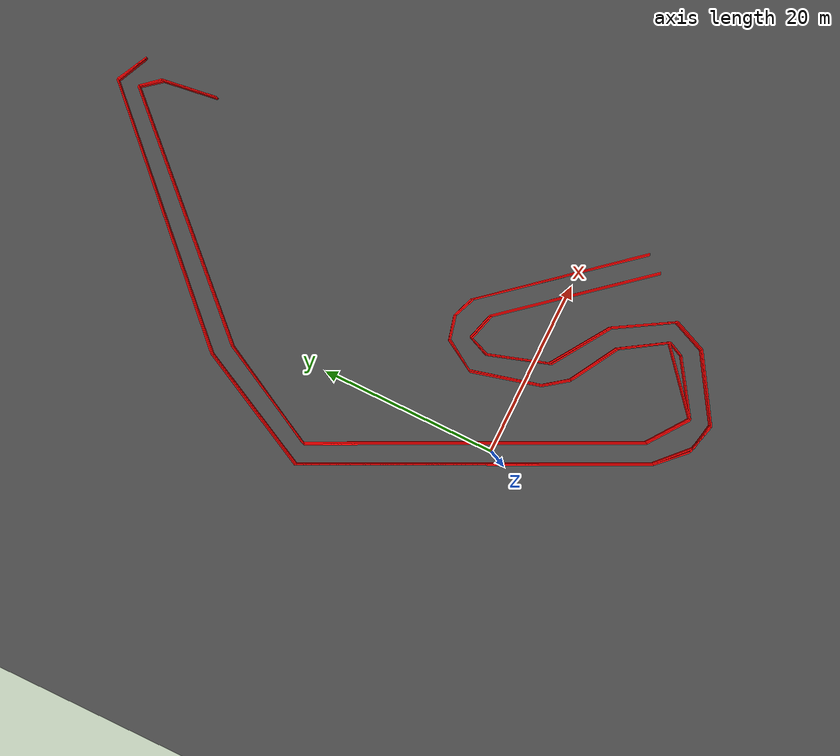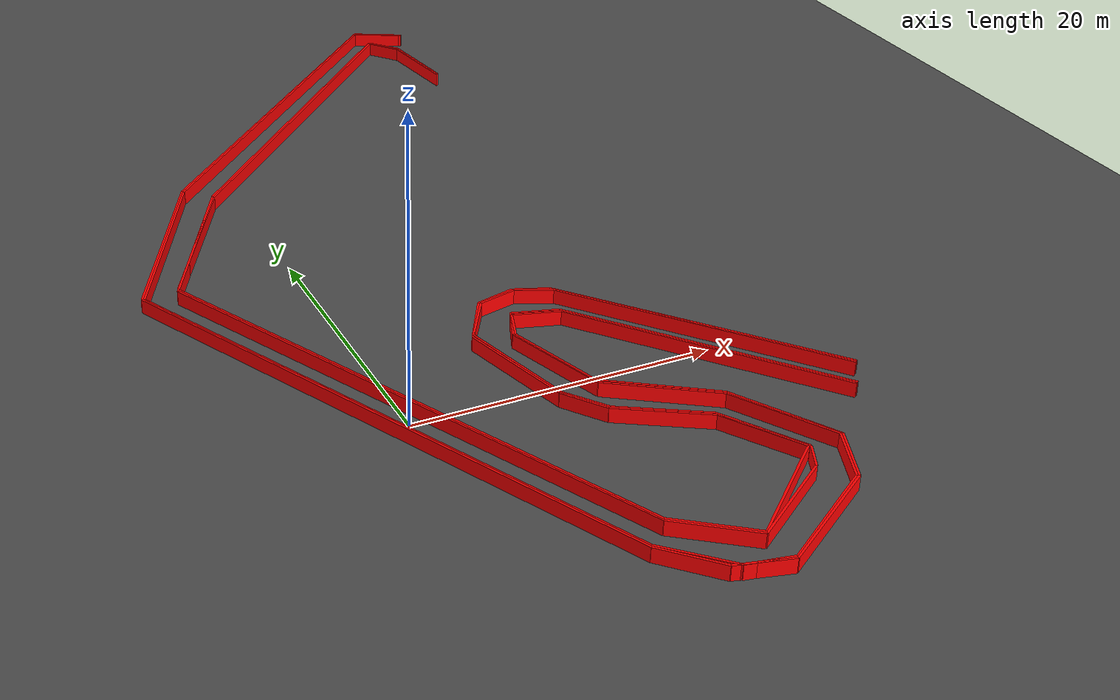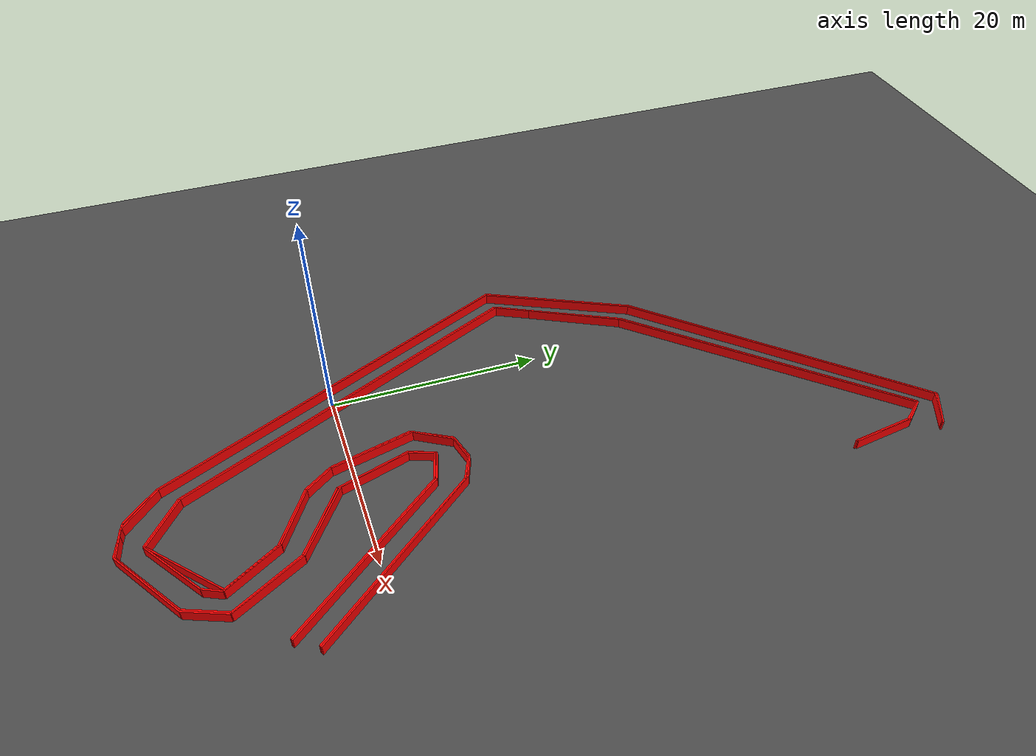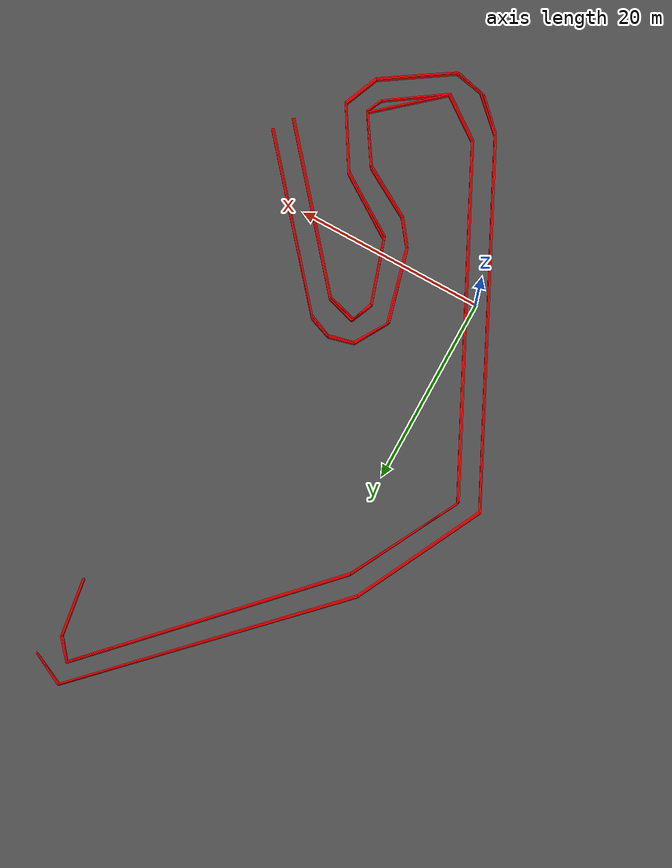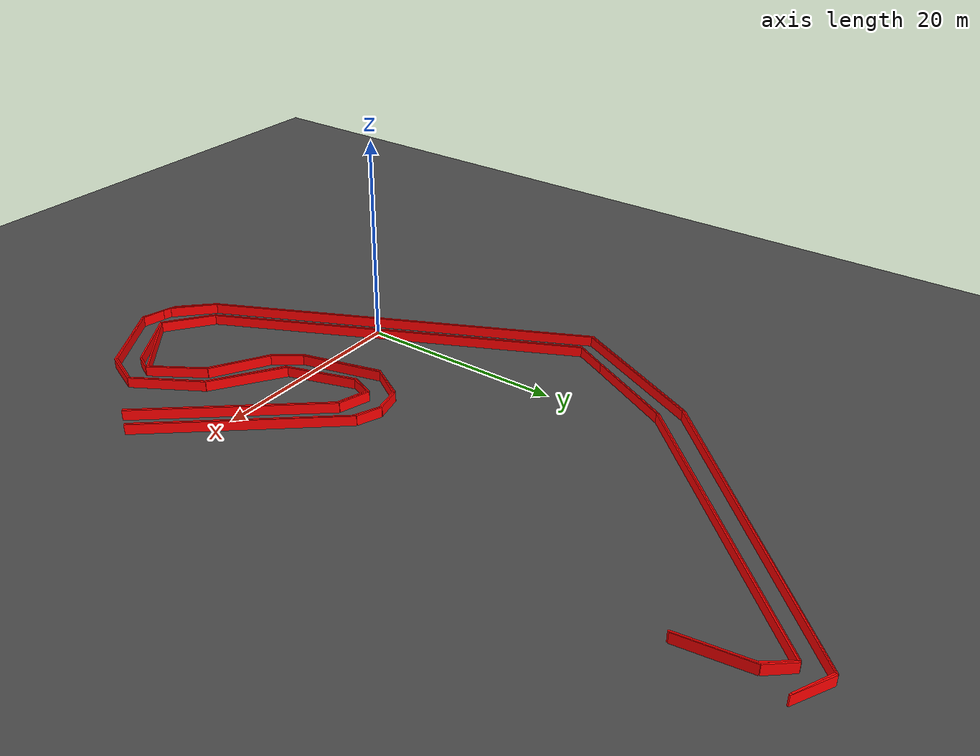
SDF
<sdf version="1.6">
 <world name="track_world">
  <model name="ground_plane">
   <static>true</static>
   <link name="link">
    <collision name="collision">
     <geometry><plane><normal>0 0 1</normal><size>1000 1000</size></plane></geometry>
    </collision>
    <visual name="visual">
     <geometry><plane><normal>0 0 1</normal><size>1000 1000</size></plane></geometry>
     <material><ambient>0.3 0.3 0.3 1</ambient><diffuse>0.3 0.3 0.3 1</diffuse></material>
    </visual>
   </link>
  </model>
  <model name="wall_0">
   <static>true</static>
   <pose>-2.016873834397966 1.0977800031214713 0.5 0 0 -1.1171792455826415</pose>
   <link name="link">
    <visual name="visual">
     <geometry><box><size>38.8459968612314 0.15 1.0</size></box></geometry>
     <material><ambient>1 0 0 1</ambient><diffuse>1 0 0 1</diffuse></material>
    </visual>
    <collision name="collision"><geometry><box><size>38.8459968612314 0.15 1.0</size></box></geometry></collision>
   </link>
  </model>
  <model name="wall_1">
   <static>true</static>
   <pose>7.969106165602033 -17.835369996878526 0.5 0 0 -0.7853981633974483</pose>
   <link name="link">
    <visual name="visual">
     <geometry><box><size>4.170346089810772 0.15 1.0</size></box></geometry>
     <material><ambient>1 0 0 1</ambient><diffuse>1 0 0 1</diffuse></material>
    </visual>
    <collision name="collision">
     <geometry><box><size>4.170346089810772 0.15 1.0</size></box></geometry>
    </collision>
   </link>
  </model>
  <model name="wall_2">
   <static>true</static>
   <pose>11.186066165602032 -19.745439996878524 0.5 0 0 -0.24497866312686414</pose>
   <link name="link">
    <visual name="visual">
     <geometry><box><size>3.592297007375641 0.15 1.0</size></box></geometry>
     <material><ambient>1 0 0 1</ambient><diffuse>1 0 0 1</diffuse></material>
    </visual>
    <collision name="collision">
     <geometry><box><size>3.592297007375641 0.15 1.0</size></box></geometry>
    </collision>
   </link>
  </model>
  <model name="wall_3">
   <static>true</static>
   <pose>16.48064616560203 -17.902389996878526 0.5 0 0 0.5703832816499416</pose>
   <link name="link">
    <visual name="visual">
     <geometry><box><size>8.440263689245734 0.15 1.0</size></box></geometry>
     <material><ambient>1 0 0 1</ambient><diffuse>1 0 0 1</diffuse></material>
    </visual>
    <collision name="collision">
     <geometry><box><size>8.440263689245734 0.15 1.0</size></box></geometry>
    </collision>
   </link>
  </model>
  <model name="wall_4">
   <static>true</static>
   <pose>20.803436165602033 -13.780659996878523 0.5 0 0 1.1747148852305893</pose>
   <link name="link">
    <visual name="visual">
     <geometry><box><size>3.9954264029762863 0.15 1.0</size></box></geometry>
     <material><ambient>1 0 0 1</ambient><diffuse>1 0 0 1</diffuse></material>
    </visual>
    <collision name="collision">
     <geometry><box><size>3.9954264029762863 0.15 1.0</size></box></geometry>
    </collision>
   </link>
  </model>
  <model name="wall_5">
   <static>true</static>
   <pose>19.697606165602032 -8.787669996878524 0.5 0 0 2.108081041095669</pose>
   <link name="link">
    <visual name="visual">
     <geometry><box><size>7.333102873190853 0.15 1.0</size></box></geometry>
     <material><ambient>1 0 0 1</ambient><diffuse>1 0 0 1</diffuse></material>
    </visual>
    <collision name="collision">
     <geometry><box><size>7.333102873190853 0.15 1.0</size></box></geometry>
    </collision>
   </link>
  </model>
  <model name="wall_6">
   <static>true</static>
   <pose>14.637596165602032 -3.5265999968785238 0.5 0 0 2.556023135265334</pose>
   <link name="link">
    <visual name="visual">
     <geometry><box><size>7.639692082643123 0.15 1.0</size></box></geometry>
     <material><ambient>1 0 0 1</ambient><diffuse>1 0 0 1</diffuse></material>
    </visual>
    <collision name="collision">
     <geometry><box><size>7.639692082643123 0.15 1.0</size></box></geometry>
    </collision>
   </link>
  </model>
  <model name="wall_7">
   <static>true</static>
   <pose>10.415336165602033 1.8350000031214755 0.5 0 0 1.880125159869584</pose>
   <link name="link">
    <visual name="visual">
     <geometry><box><size>6.824860859241007 0.15 1.0</size></box></geometry>
     <material><ambient>1 0 0 1</ambient><diffuse>1 0 0 1</diffuse></material>
    </visual>
    <collision name="collision">
     <geometry><box><size>6.824860859241007 0.15 1.0</size></box></geometry>
    </collision>
   </link>
  </model>
  <model name="wall_8">
   <static>true</static>
   <pose>9.778646165602034 6.191300003121473 0.5 0 0 1.2220253232109899</pose>
   <link name="link">
    <visual name="visual">
     <geometry><box><size>2.35334696404929 0.15 1.0</size></box></geometry>
     <material><ambient>1 0 0 1</ambient><diffuse>1 0 0 1</diffuse></material>
    </visual>
    <collision name="collision"><geometry><box><size>2.35334696404929 0.15 1.0</size></box></geometry></collision>
   </link>
  </model>
  <model name="wall_9">
   <static>true</static>
   <pose>11.722226165602034 6.861500003121474 0.5 0 0 -0.2754261036960351</pose>
   <link name="link">
    <visual name="visual">
     <geometry><box><size>3.203668165400407 0.15 1.0</size></box></geometry>
     <material><ambient>1 0 0 1</ambient><diffuse>1 0 0 1</diffuse></material>
    </visual>
    <collision name="collision">
     <geometry><box><size>3.203668165400407 0.15 1.0</size></box></geometry>
    </collision>
   </link>
  </model>
  <model name="wall_10">
   <static>true</static>
   <pose>19.32899616560203 -0.7787799968785265 0.5 0 0 -0.8710467030279754</pose>
   <link name="link">
    <visual name="visual">
     <geometry><box><size>18.835601080783164 0.15 1.0</size></box></geometry>
     <material><ambient>1 0 0 1</ambient><diffuse>1 0 0 1</diffuse></material>
    </visual>
    <collision name="collision">
     <geometry><box><size>18.835601080783164 0.15 1.0</size></box></geometry>
    </collision>
   </link>
  </model>
  <model name="wall_27">
   <static>true</static>
   <pose>20.30078616560203 53.23934000312147 0.5 0 0 2.6626790550422075</pose>
   <link name="link">
    <visual name="visual">
     <geometry><box><size>3.926822992343808 0.15 1.0</size></box></geometry>
     <material><ambient>1 0 0 1</ambient><diffuse>1 0 0 1</diffuse></material>
    </visual>
    <collision name="collision">
     <geometry><box><size>3.926822992343808 0.15 1.0</size></box></geometry>
    </collision>
   </link>
  </model>
  <model name="wall_28">
   <static>true</static>
   <pose>7.432946165602033 43.05230000312147 0.5 0 0 -2.3577027846745207</pose>
   <link name="link">
    <visual name="visual">
     <geometry><box><size>31.41980230227427 0.15 1.0</size></box></geometry>
     <material><ambient>1 0 0 1</ambient><diffuse>1 0 0 1</diffuse></material>
    </visual>
    <collision name="collision">
     <geometry><box><size>31.41980230227427 0.15 1.0</size></box></geometry>
    </collision>
   </link>
  </model>
  <model name="wall_29">
   <static>true</static>
   <pose>-7.110393834397966 25.258490003121473 0.5 0 0 -2.042411894657224</pose>
   <link name="link">
    <visual name="visual">
     <geometry><box><size>15.046549733463824 0.15 1.0</size></box></geometry>
     <material><ambient>1 0 0 1</ambient><diffuse>1 0 0 1</diffuse></material>
    </visual>
    <collision name="collision">
     <geometry><box><size>15.046549733463824 0.15 1.0</size></box></geometry>
    </collision>
   </link>
  </model>
  <model name="wall_30">
   <static>true</static>
   <pose>-7.009863834397966 25.157960003121474 0.5 0 0 1.1011367661781577</pose>
   <link name="link">
    <visual name="visual">
     <geometry><box><size>14.95642561846915 0.15 1.0</size></box></geometry>
     <material><ambient>1 0 0 1</ambient><diffuse>1 0 0 1</diffuse></material>
    </visual>
    <collision name="collision">
     <geometry><box><size>14.95642561846915 0.15 1.0</size></box></geometry>
    </collision>
   </link>
  </model>
  <model name="wall_31">
   <static>true</static>
   <pose>7.432946165602033 42.918260003121475 0.5 0 0 0.7869110215473523</pose>
   <link name="link">
    <visual name="visual">
     <geometry><box><size>31.325021817460872 0.15 1.0</size></box></geometry>
     <material><ambient>1 0 0 1</ambient><diffuse>1 0 0 1</diffuse></material>
    </visual>
    <collision name="collision">
     <geometry><box><size>31.325021817460872 0.15 1.0</size></box></geometry>
    </collision>
   </link>
  </model>
  <model name="wall_32">
   <static>true</static>
   <pose>20.16674616560203 53.20583000312147 0.5 0 0 -0.44751997515717</pose>
   <link name="link">
    <visual name="visual">
     <geometry><box><size>3.717043033164937 0.15 1.0</size></box></geometry>
     <material><ambient>1 0 0 1</ambient><diffuse>1 0 0 1</diffuse></material>
    </visual>
    <collision name="collision">
     <geometry><box><size>3.717043033164937 0.15 1.0</size></box></geometry>
    </collision>
   </link>
  </model>
  <model name="wall_49">
   <static>true</static>
   <pose>19.396016165602035 -0.6447399968785241 0.5 0 0 2.271398315669142</pose>
   <link name="link">
    <visual name="visual">
     <geometry><box><size>19.02447432312388 0.15 1.0</size></box></geometry>
     <material><ambient>1 0 0 1</ambient><diffuse>1 0 0 1</diffuse></material>
    </visual>
    <collision name="collision">
     <geometry><box><size>19.02447432312388 0.15 1.0</size></box></geometry>
    </collision>
   </link>
  </model>
  <model name="wall_50">
   <static>true</static>
   <pose>11.755736165602034 7.062560003121472 0.5 0 0 2.8603604516714984</pose>
   <link name="link">
    <visual name="visual">
     <geometry><box><size>3.139227101947231 0.15 1.0</size></box></geometry>
     <material><ambient>1 0 0 1</ambient><diffuse>1 0 0 1</diffuse></material>
    </visual>
    <collision name="collision">
     <geometry><box><size>3.139227101947231 0.15 1.0</size></box></geometry>
    </collision>
   </link>
  </model>
  <model name="wall_51">
   <static>true</static>
   <pose>9.745136165602032 6.325340003121475 0.5 0 0 -1.9756881130799817</pose>
   <link name="link">
    <visual name="visual">
     <geometry><box><size>2.5520455677749907 0.15 1.0</size></box></geometry>
     <material><ambient>1 0 0 1</ambient><diffuse>1 0 0 1</diffuse></material>
    </visual>
    <collision name="collision">
     <geometry><box><size>2.5520455677749907 0.15 1.0</size></box></geometry>
    </collision>
   </link>
  </model>
  <model name="wall_52">
   <static>true</static>
   <pose>10.348316165602032 1.7344700031214764 0.5 0 0 -1.2578950989145121</pose>
   <link name="link">
    <visual name="visual">
     <geometry><box><size>7.184906599058895 0.15 1.0</size></box></geometry>
     <material><ambient>1 0 0 1</ambient><diffuse>1 0 0 1</diffuse></material>
    </visual>
    <collision name="collision">
     <geometry><box><size>7.184906599058895 0.15 1.0</size></box></geometry>
    </collision>
   </link>
  </model>
  <model name="wall_53">
   <static>true</static>
   <pose>14.604086165602032 -3.7276599968785256 0.5 0 0 -0.5756269977603663</pose>
   <link name="link">
    <visual name="visual">
     <geometry><box><size>7.510128546356579 0.15 1.0</size></box></geometry>
     <material><ambient>1 0 0 1</ambient><diffuse>1 0 0 1</diffuse></material>
    </visual>
    <collision name="collision">
     <geometry><box><size>7.510128546356579 0.15 1.0</size></box></geometry>
    </collision>
   </link>
  </model>
  <model name="wall_54">
   <static>true</static>
   <pose>19.597076165602033 -8.821179996878524 0.5 0 0 -1.0271510312616907</pose>
   <link name="link">
    <visual name="visual">
     <geometry><box><size>7.126214886066795 0.15 1.0</size></box></geometry>
     <material><ambient>1 0 0 1</ambient><diffuse>1 0 0 1</diffuse></material>
    </visual>
    <collision name="collision">
     <geometry><box><size>7.126214886066795 0.15 1.0</size></box></geometry>
    </collision>
   </link>
  </model>
  <model name="wall_55">
   <static>true</static>
   <pose>20.669396165602034 -13.713639996878523 0.5 0 0 -1.966877768359204</pose>
   <link name="link">
    <visual name="visual">
     <geometry><box><size>3.9954264029762863 0.15 1.0</size></box></geometry>
     <material><ambient>1 0 0 1</ambient><diffuse>1 0 0 1</diffuse></material>
    </visual>
    <collision name="collision">
     <geometry><box><size>3.9954264029762863 0.15 1.0</size></box></geometry>
    </collision>
   </link>
  </model>
  <model name="wall_56">
   <static>true</static>
   <pose>16.447136165602032 -17.801859996878527 0.5 0 0 -2.564876252527372</pose>
   <link name="link">
    <visual name="visual">
     <geometry><box><size>8.235010059447411 0.15 1.0</size></box></geometry>
     <material><ambient>1 0 0 1</ambient><diffuse>1 0 0 1</diffuse></material>
    </visual>
    <collision name="collision">
     <geometry><box><size>8.235010059447411 0.15 1.0</size></box></geometry>
    </collision>
   </link>
  </model>
  <model name="wall_57">
   <static>true</static>
   <pose>11.52116616560203 -19.778949996878524 0.5 0 0 2.961739153797314</pose>
   <link name="link">
    <visual name="visual">
     <geometry><box><size>2.9972255170407176 0.15 1.0</size></box></geometry>
     <material><ambient>1 0 0 1</ambient><diffuse>1 0 0 1</diffuse></material>
    </visual>
    <collision name="collision">
     <geometry><box><size>2.9972255170407176 0.15 1.0</size></box></geometry>
    </collision>
   </link>
  </model>
  <model name="wall_58">
   <static>true</static>
   <pose>8.304206165602032 -17.868879996878526 0.5 0 0 2.385888729799255</pose>
   <link name="link">
    <visual name="visual">
     <geometry><box><size>4.788530927330423 0.15 1.0</size></box></geometry>
     <material><ambient>1 0 0 1</ambient><diffuse>1 0 0 1</diffuse></material>
    </visual>
    <collision name="collision">
     <geometry><box><size>4.788530927330423 0.15 1.0</size></box></geometry>
    </collision>
   </link>
  </model>
  <model name="wall_59">
   <static>true</static>
   <pose>-1.9163438343979662 1.131290003121471 0.5 0 0 2.0251346624460393</pose>
   <link name="link">
    <visual name="visual">
     <geometry><box><size>38.63591104624297 0.15 1.0</size></box></geometry>
     <material><ambient>1 0 0 1</ambient><diffuse>1 0 0 1</diffuse></material>
    </visual>
    <collision name="collision">
     <geometry><box><size>38.63591104624297 0.15 1.0</size></box></geometry>
    </collision>
   </link>
  </model>
  <model name="wall_60">
   <static>true</static>
   <pose>0.060746165602033386 1.9690400031214779 0.5 0 0 -1.1144183797129017</pose>
   <link name="link">
    <visual name="visual">
     <geometry><box><size>37.10663240201138 0.15 1.0</size></box></geometry>
     <material><ambient>1 0 0 1</ambient><diffuse>1 0 0 1</diffuse></material>
    </visual>
    <collision name="collision">
     <geometry><box><size>37.10663240201138 0.15 1.0</size></box></geometry>
    </collision>
   </link>
  </model>
  <model name="wall_61">
   <static>true</static>
   <pose>10.415336165602033 -16.260399996878526 0.5 0 0 -0.6260465224935314</pose>
   <link name="link">
    <visual name="visual">
     <geometry><box><size>5.375822885252082 0.15 1.0</size></box></geometry>
     <material><ambient>1 0 0 1</ambient><diffuse>1 0 0 1</diffuse></material>
    </visual>
    <collision name="collision">
     <geometry><box><size>5.375822885252082 0.15 1.0</size></box></geometry>
    </collision>
   </link>
  </model>
  <model name="wall_62">
   <static>true</static>
   <pose>15.508856165602033 -15.858279996878526 0.5 0 0 0.5959180055163013</pose>
   <link name="link">
    <visual name="visual">
     <geometry><box><size>7.045074053549755 0.15 1.0</size></box></geometry>
     <material><ambient>1 0 0 1</ambient><diffuse>1 0 0 1</diffuse></material>
    </visual>
    <collision name="collision">
     <geometry><box><size>7.045074053549755 0.15 1.0</size></box></geometry>
    </collision>
   </link>
  </model>
  <model name="wall_63">
   <static>true</static>
   <pose>18.826346165602033 -13.043439996878526 0.5 0 0 1.1232763516377267</pose>
   <link name="link">
    <visual name="visual">
     <geometry><box><size>1.8585215165824684 0.15 1.0</size></box></geometry>
     <material><ambient>1 0 0 1</ambient><diffuse>1 0 0 1</diffuse></material>
    </visual>
    <collision name="collision">
     <geometry><box><size>1.8585215165824684 0.15 1.0</size></box></geometry>
    </collision>
   </link>
  </model>
  <model name="wall_64">
   <static>true</static>
   <pose>17.653496165602032 -9.725949996878526 0.5 0 0 2.1366506539029566</pose>
   <link name="link">
    <visual name="visual">
     <geometry><box><size>5.87525011161227 0.15 1.0</size></box></geometry>
     <material><ambient>1 0 0 1</ambient><diffuse>1 0 0 1</diffuse></material>
    </visual>
    <collision name="collision"><geometry><box><size>5.87525011161227 0.15 1.0</size></box></geometry></collision>
   </link>
  </model>
  <model name="wall_65">
   <static>true</static>
   <pose>13.464746165602032 -5.738259996878526 0.5 0 0 2.6183143314578174</pose>
   <link name="link">
    <visual name="visual">
     <geometry><box><size>6.035150069683439 0.15 1.0</size></box></geometry>
     <material><ambient>1 0 0 1</ambient><diffuse>1 0 0 1</diffuse></material>
    </visual>
    <collision name="collision">
     <geometry><box><size>6.035150069683439 0.15 1.0</size></box></geometry>
    </collision>
   </link>
  </model>
  <model name="wall_66">
   <static>true</static>
   <pose>9.912686165602032 -2.990439996878525 0.5 0 0 2.2186077537219946</pose>
   <link name="link">
    <visual name="visual">
     <geometry><box><size>3.1097568877968564 0.15 1.0</size></box></geometry>
     <material><ambient>1 0 0 1</ambient><diffuse>1 0 0 1</diffuse></material>
    </visual>
    <collision name="collision">
     <geometry><box><size>3.1097568877968564 0.15 1.0</size></box></geometry>
    </collision>
   </link>
  </model>
  <model name="wall_67">
   <static>true</static>
   <pose>7.969106165602033 2.170100003121476 0.5 0 0 1.8217990134379312</pose>
   <link name="link">
    <visual name="visual">
     <geometry><box><size>8.09500619861406 0.15 1.0</size></box></geometry>
     <material><ambient>1 0 0 1</ambient><diffuse>1 0 0 1</diffuse></material>
    </visual>
    <collision name="collision"><geometry><box><size>8.09500619861406 0.15 1.0</size></box></geometry></collision>
   </link>
  </model>
  <model name="wall_68">
   <static>true</static>
   <pose>8.002616165602033 7.732760003121477 0.5 0 0 1.0067126057452396</pose>
   <link name="link">
    <visual name="visual">
     <geometry><box><size>3.8860043109600375 0.15 1.0</size></box></geometry>
     <material><ambient>1 0 0 1</ambient><diffuse>1 0 0 1</diffuse></material>
    </visual>
    <collision name="collision">
     <geometry><box><size>3.8860043109600375 0.15 1.0</size></box></geometry>
    </collision>
   </link>
  </model>
  <model name="wall_69">
   <static>true</static>
   <pose>10.348316165602032 9.676340003121474 0.5 0 0 0.2267988480538841</pose>
   <link name="link">
    <visual name="visual">
     <geometry><box><size>2.682474976733238 0.15 1.0</size></box></geometry>
     <material><ambient>1 0 0 1</ambient><diffuse>1 0 0 1</diffuse></material>
    </visual>
    <collision name="collision">
     <geometry><box><size>2.682474976733238 0.15 1.0</size></box></geometry>
    </collision>
   </link>
  </model>
  <model name="wall_70">
   <static>true</static>
   <pose>12.861566165602033 9.475280003121473 0.5 0 0 -0.3947911196997604</pose>
   <link name="link">
    <visual name="visual">
     <geometry><box><size>2.613780000000003 0.15 1.0</size></box></geometry>
     <material><ambient>1 0 0 1</ambient><diffuse>1 0 0 1</diffuse></material>
    </visual>
    <collision name="collision">
     <geometry><box><size>2.613780000000003 0.15 1.0</size></box></geometry>
    </collision>
   </link>
  </model>
  <model name="wall_71">
   <static>true</static>
   <pose>20.401316165602033 1.4663900031214752 0.5 0 0 -0.8699419189104465</pose>
   <link name="link">
    <visual name="visual">
     <geometry><box><size>19.64234892569623 0.15 1.0</size></box></geometry>
     <material><ambient>1 0 0 1</ambient><diffuse>1 0 0 1</diffuse></material>
    </visual>
    <collision name="collision">
     <geometry><box><size>19.64234892569623 0.15 1.0</size></box></geometry>
    </collision>
   </link>
  </model>
  <model name="wall_85">
   <static>true</static>
   <pose>21.071516165602034 46.70489000312148 0.5 0 0 1.7111713125592298</pose>
   <link name="link">
    <visual name="visual">
     <geometry><box><size>6.227092169961838 0.15 1.0</size></box></geometry>
     <material><ambient>1 0 0 1</ambient><diffuse>1 0 0 1</diffuse></material>
    </visual>
    <collision name="collision">
     <geometry><box><size>6.227092169961838 0.15 1.0</size></box></geometry>
    </collision>
   </link>
  </model>
  <model name="wall_86">
   <static>true</static>
   <pose>19.76462616560203 50.79311000312148 0.5 0 0 2.2848870254070572</pose>
   <link name="link">
    <visual name="visual">
     <geometry><box><size>2.660618031661066 0.15 1.0</size></box></geometry>
     <material><ambient>1 0 0 1</ambient><diffuse>1 0 0 1</diffuse></material>
    </visual>
    <collision name="collision">
     <geometry><box><size>2.660618031661066 0.15 1.0</size></box></geometry>
    </collision>
   </link>
  </model>
  <model name="wall_87">
   <static>true</static>
   <pose>8.47175616560203 41.07521000312148 0.5 0 0 -2.3419323827936087</pose>
   <link name="link">
    <visual name="visual">
     <geometry><box><size>29.906318612099344 0.15 1.0</size></box></geometry>
     <material><ambient>1 0 0 1</ambient><diffuse>1 0 0 1</diffuse></material>
    </visual>
    <collision name="collision">
     <geometry><box><size>29.906318612099344 0.15 1.0</size></box></geometry>
    </collision>
   </link>
  </model>
  <model name="wall_88">
   <static>true</static>
   <pose>-5.032773834397966 24.48776000312148 0.5 0 0 -2.054803113346168</pose>
   <link name="link">
    <visual name="visual">
     <geometry><box><size>13.250482827263312 0.15 1.0</size></box></geometry>
     <material><ambient>1 0 0 1</ambient><diffuse>1 0 0 1</diffuse></material>
    </visual>
    <collision name="collision">
     <geometry><box><size>13.250482827263312 0.15 1.0</size></box></geometry>
    </collision>
   </link>
  </model>
  <model name="wall_89">
   <static>true</static>
   <pose>-4.999263834397967 24.48776000312148 0.5 0 0 1.0768549578753155</pose>
   <link name="link">
    <visual name="visual">
     <geometry><box><size>12.863999739458952 0.15 1.0</size></box></geometry>
     <material><ambient>1 0 0 1</ambient><diffuse>1 0 0 1</diffuse></material>
    </visual>
    <collision name="collision">
     <geometry><box><size>12.863999739458952 0.15 1.0</size></box></geometry>
    </collision>
   </link>
  </model>
  <model name="wall_90">
   <static>true</static>
   <pose>8.47175616560203 40.90766000312148 0.5 0 0 0.801219627939022</pose>
   <link name="link">
    <visual name="visual">
     <geometry><box><size>29.954416369957862 0.15 1.0</size></box></geometry>
     <material><ambient>1 0 0 1</ambient><diffuse>1 0 0 1</diffuse></material>
    </visual>
    <collision name="collision">
     <geometry><box><size>29.954416369957862 0.15 1.0</size></box></geometry>
    </collision>
   </link>
  </model>
  <model name="wall_91">
   <static>true</static>
   <pose>19.73111616560203 50.62556000312147 0.5 0 0 -0.8921338360465845</pose>
   <link name="link">
    <visual name="visual">
     <geometry><box><size>2.669045731043225 0.15 1.0</size></box></geometry>
     <material><ambient>1 0 0 1</ambient><diffuse>1 0 0 1</diffuse></material>
    </visual>
    <collision name="collision">
     <geometry><box><size>2.669045731043225 0.15 1.0</size></box></geometry>
    </collision>
   </link>
  </model>
  <model name="wall_92">
   <static>true</static>
   <pose>21.004496165602035 46.53734000312147 0.5 0 0 -1.4288992721907325</pose>
   <link name="link">
    <visual name="visual">
     <geometry><box><size>6.1607385417659035 0.15 1.0</size></box></geometry>
     <material><ambient>1 0 0 1</ambient><diffuse>1 0 0 1</diffuse></material>
    </visual>
    <collision name="collision">
     <geometry><box><size>6.1607385417659035 0.15 1.0</size></box></geometry>
    </collision>
   </link>
  </model>
  <model name="wall_106">
   <static>true</static>
   <pose>20.40131616560203 1.6339400031214772 0.5 0 0 2.2754182519237722</pose>
   <link name="link">
    <visual name="visual">
     <geometry><box><size>19.969036094694207 0.15 1.0</size></box></geometry>
     <material><ambient>1 0 0 1</ambient><diffuse>1 0 0 1</diffuse></material>
    </visual>
    <collision name="collision">
     <geometry><box><size>19.969036094694207 0.15 1.0</size></box></geometry>
    </collision>
   </link>
  </model>
  <model name="wall_107">
   <static>true</static>
   <pose>12.76103616560203 9.676340003121478 0.5 0 0 2.7859567692890335</pose>
   <link name="link">
    <visual name="visual">
     <geometry><box><size>2.50227945633576 0.15 1.0</size></box></geometry>
     <material><ambient>1 0 0 1</ambient><diffuse>1 0 0 1</diffuse></material>
    </visual>
    <collision name="collision"><geometry><box><size>2.50227945633576 0.15 1.0</size></box></geometry></collision>
   </link>
  </model>
  <model name="wall_108">
   <static>true</static>
   <pose>10.247786165602033 9.776870003121477 0.5 0 0 -2.8966139904629284</pose>
   <link name="link">
    <visual name="visual">
     <geometry><box><size>2.7633053902889544 0.15 1.0</size></box></geometry>
     <material><ambient>1 0 0 1</ambient><diffuse>1 0 0 1</diffuse></material>
    </visual>
    <collision name="collision">
     <geometry><box><size>2.7633053902889544 0.15 1.0</size></box></geometry>
    </collision>
   </link>
  </model>
  <model name="wall_109">
   <static>true</static>
   <pose>7.8685761656020325 7.665740003121474 0.5 0 0 -2.1000431076267416</pose>
   <link name="link">
    <visual name="visual">
     <geometry><box><size>4.1150498305609915 0.15 1.0</size></box></geometry>
     <material><ambient>1 0 0 1</ambient><diffuse>1 0 0 1</diffuse></material>
    </visual>
    <collision name="collision">
     <geometry><box><size>4.1150498305609915 0.15 1.0</size></box></geometry>
    </collision>
   </link>
  </model>
  <model name="wall_110">
   <static>true</static>
   <pose>7.835066165602031 2.0695700031214734 0.5 0 0 -1.3134726118238078</pose>
   <link name="link">
    <visual name="visual">
     <geometry><box><size>7.900404473088701 0.15 1.0</size></box></geometry>
     <material><ambient>1 0 0 1</ambient><diffuse>1 0 0 1</diffuse></material>
    </visual>
    <collision name="collision">
     <geometry><box><size>7.900404473088701 0.15 1.0</size></box></geometry>
    </collision>
   </link>
  </model>
  <model name="wall_111">
   <static>true</static>
   <pose>9.778646165602032 -3.0239499968785246 0.5 0 0 -0.9357695914045824</pose>
   <link name="link">
    <visual name="visual">
     <geometry><box><size>3.16345759118089 0.15 1.0</size></box></geometry>
     <material><ambient>1 0 0 1</ambient><diffuse>1 0 0 1</diffuse></material>
    </visual>
    <collision name="collision"><geometry><box><size>3.16345759118089 0.15 1.0</size></box></geometry></collision>
   </link>
  </model>
  <model name="wall_112">
   <static>true</static>
   <pose>13.397726165602032 -5.8722999968785246 0.5 0 0 -0.5311776192257649</pose>
   <link name="link">
    <visual name="visual">
     <geometry><box><size>6.218430393885582 0.15 1.0</size></box></geometry>
     <material><ambient>1 0 0 1</ambient><diffuse>1 0 0 1</diffuse></material>
    </visual>
    <collision name="collision">
     <geometry><box><size>6.218430393885582 0.15 1.0</size></box></geometry>
    </collision>
   </link>
  </model>
  <model name="wall_113">
   <static>true</static>
   <pose>17.586476165602033 -9.792969996878526 0.5 0 0 -0.9994588469612696</pose>
   <link name="link">
    <visual name="visual">
     <geometry><box><size>5.577175519023946 0.15 1.0</size></box></geometry>
     <material><ambient>1 0 0 1</ambient><diffuse>1 0 0 1</diffuse></material>
    </visual>
    <collision name="collision">
     <geometry><box><size>5.577175519023946 0.15 1.0</size></box></geometry>
    </collision>
   </link>
  </model>
  <model name="wall_114">
   <static>true</static>
   <pose>15.877466165602033 -14.919999996878524 0.5 0 0 -2.428692903203774</pose>
   <link name="link">
    <visual name="visual">
     <geometry><box><size>8.505205044089175 0.15 1.0</size></box></geometry>
     <material><ambient>1 0 0 1</ambient><diffuse>1 0 0 1</diffuse></material>
    </visual>
    <collision name="collision">
     <geometry><box><size>8.505205044089175 0.15 1.0</size></box></geometry>
    </collision>
   </link>
  </model>
  <model name="wall_115">
   <static>true</static>
   <pose>10.482356165602033 -16.126359996878524 0.5 0 0 2.515546131096263</pose>
   <link name="link">
    <visual name="visual">
     <geometry><box><size>5.375822885252077 0.15 1.0</size></box></geometry>
     <material><ambient>1 0 0 1</ambient><diffuse>1 0 0 1</diffuse></material>
    </visual>
    <collision name="collision">
     <geometry><box><size>5.375822885252077 0.15 1.0</size></box></geometry>
    </collision>
   </link>
  </model>
  <model name="wall_116">
   <static>true</static>
   <pose>0.1277661656020328 2.1365900031214764 0.5 0 0 2.026379594488936</pose>
   <link name="link">
    <visual name="visual">
     <geometry><box><size>37.16680495033169 0.15 1.0</size></box></geometry>
     <material><ambient>1 0 0 1</ambient><diffuse>1 0 0 1</diffuse></material>
    </visual>
    <collision name="collision">
     <geometry><box><size>37.16680495033169 0.15 1.0</size></box></geometry>
    </collision>
   </link>
  </model>
 </world>
</sdf>
